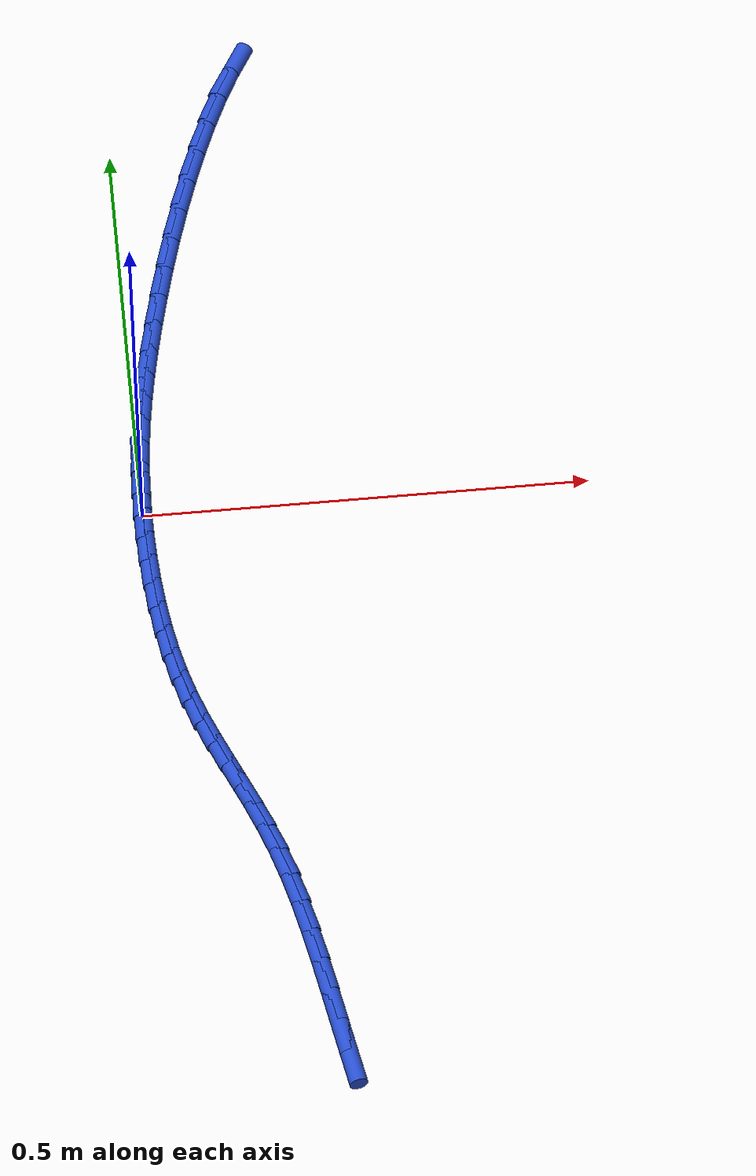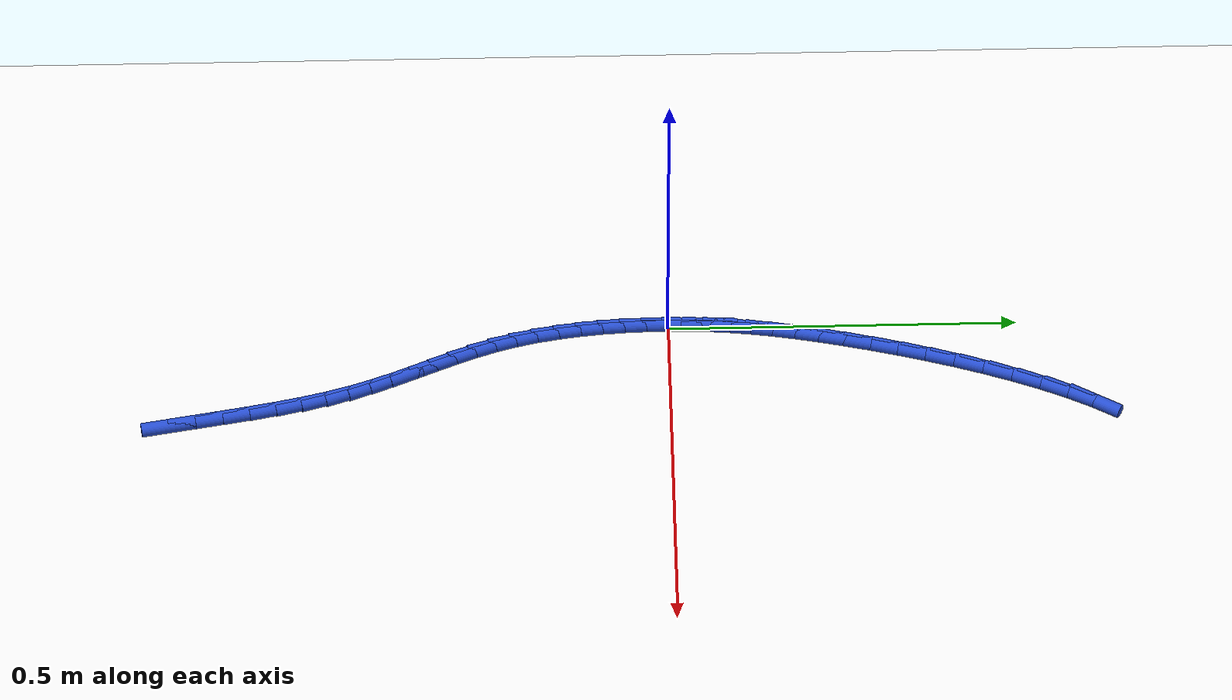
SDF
<sdf version="1.6">
 <world name="default">
  <model name="ground_plane">
   <static>1</static>
   <link name="link">
    <collision name="collision">
     <geometry><plane><normal>0 0 1</normal><size>100 100</size></plane></geometry>
     <surface><friction><ode><mu>100</mu><mu2>50</mu2></ode></friction></surface>
    </collision>
    <visual name="visual">
     <cast_shadows>0</cast_shadows>
     <geometry><plane><normal>0 0 1</normal><size>100 100</size></plane></geometry>
     <material>
      <script><uri>file://media/materials/scripts/gazebo.material</uri><name>Gazebo/WhiteGlow</name></script>
     </material>
    </visual>
   </link>
  </model>
  <model name="line">
   <link name="link_0">
    <pose>1.5178830414797062e-17 -6.938893903907228e-18 0.01 0 1.57 1.5493245993481484</pose>
    <collision name="collision">
     <geometry><cylinder><radius>0.01</radius><length>0.08</length></cylinder></geometry>
    </collision>
    <visual name="visual">
     <material>
      <script><name>Gazebo/Blue</name><uri>file://media/materials/scripts/gazebo.material</uri></script>
     </material>
     <geometry><cylinder><radius>0.01</radius><length>0.08</length></cylinder></geometry>
    </visual>
   </link>
   <link name="link_1">
    <pose>0.0006433644896471292 0.029958726749112572 0.01 0 1.57 1.5203189165857924</pose>
    <collision name="collision">
     <geometry><cylinder><radius>0.01</radius><length>0.08</length></cylinder></geometry>
    </collision>
    <visual name="visual">
     <material>
      <script><name>Gazebo/Blue</name><uri>file://media/materials/scripts/gazebo.material</uri></script>
     </material>
     <geometry><cylinder><radius>0.01</radius><length>0.08</length></cylinder></geometry>
    </visual>
   </link>
   <link name="link_2">
    <pose>0.0021341002988583247 0.05946637129228414 0.01 0 1.57 1.49000517151812</pose>
    <collision name="collision">
     <geometry><cylinder><radius>0.01</radius><length>0.08</length></cylinder></geometry>
    </collision>
    <visual name="visual">
     <material>
      <script><name>Gazebo/Blue</name><uri>file://media/materials/scripts/gazebo.material</uri></script>
     </material>
     <geometry><cylinder><radius>0.01</radius><length>0.08</length></cylinder></geometry>
    </visual>
   </link>
   <link name="link_3">
    <pose>0.004521526725779866 0.0889526404908136 0.01 0 1.57 1.459748752166192</pose>
    <collision name="collision">
     <geometry><cylinder><radius>0.01</radius><length>0.08</length></cylinder></geometry>
    </collision>
    <visual name="visual">
     <material>
      <script><name>Gazebo/Blue</name><uri>file://media/materials/scripts/gazebo.material</uri></script>
     </material>
     <geometry><cylinder><radius>0.01</radius><length>0.08</length></cylinder></geometry>
    </visual>
   </link>
   <link name="link_4">
    <pose>0.007854963068558022 0.11884724120599993 0.01 0 1.57 1.4308644825525358</pose>
    <collision name="collision">
     <geometry><cylinder><radius>0.01</radius><length>0.08</length></cylinder></geometry>
    </collision>
    <visual name="visual">
     <material>
      <script><name>Gazebo/Blue</name><uri>file://media/materials/scripts/gazebo.material</uri></script>
     </material>
     <geometry><cylinder><radius>0.01</radius><length>0.08</length></cylinder></geometry>
    </visual>
   </link>
   <link name="link_5">
    <pose>0.012183728625339056 0.1495798802991419 0.01 0 1.57 1.4044311878890807</pose>
    <collision name="collision">
     <geometry><cylinder><radius>0.01</radius><length>0.08</length></cylinder></geometry>
    </collision>
    <visual name="visual">
     <material>
      <script><name>Gazebo/Blue</name><uri>file://media/materials/scripts/gazebo.material</uri></script>
     </material>
     <geometry><cylinder><radius>0.01</radius><length>0.08</length></cylinder></geometry>
    </visual>
   </link>
   <link name="link_6">
    <pose>0.017557142694269237 0.1815802646315386 0.01 0 1.57 1.3811792666914606</pose>
    <collision name="collision">
     <geometry><cylinder><radius>0.01</radius><length>0.08</length></cylinder></geometry>
    </collision>
    <visual name="visual">
     <material>
      <script><name>Gazebo/Blue</name><uri>file://media/materials/scripts/gazebo.material</uri></script>
     </material>
     <geometry><cylinder><radius>0.01</radius><length>0.08</length></cylinder></geometry>
    </visual>
   </link>
   <link name="link_7">
    <pose>0.02402452457349482 0.21527810106448872 0.01 0 1.57 1.3614479357479026</pose>
    <collision name="collision">
     <geometry><cylinder><radius>0.01</radius><length>0.08</length></cylinder></geometry>
    </collision>
    <visual name="visual">
     <material>
      <script><name>Gazebo/Blue</name><uri>file://media/materials/scripts/gazebo.material</uri></script>
     </material>
     <geometry><cylinder><radius>0.01</radius><length>0.08</length></cylinder></geometry>
    </visual>
   </link>
   <link name="link_8">
    <pose>0.03163474784347373 0.2510974351449298 0.01 0 1.57 1.3438799071415506</pose>
    <collision name="collision">
     <geometry><cylinder><radius>0.01</radius><length>0.08</length></cylinder></geometry>
    </collision>
    <visual name="visual">
     <material>
      <script><name>Gazebo/Blue</name><uri>file://media/materials/scripts/gazebo.material</uri></script>
     </material>
     <geometry><cylinder><radius>0.01</radius><length>0.08</length></cylinder></geometry>
    </visual>
   </link>
   <link name="link_9">
    <pose>0.04040758389248529 0.2890926688924378 0.01 0 1.57 1.3258168243298414</pose>
    <collision name="collision">
     <geometry><cylinder><radius>0.01</radius><length>0.08</length></cylinder></geometry>
    </collision>
    <visual name="visual">
     <material>
      <script><name>Gazebo/Blue</name><uri>file://media/materials/scripts/gazebo.material</uri></script>
     </material>
     <geometry><cylinder><radius>0.01</radius><length>0.08</length></cylinder></geometry>
    </visual>
   </link>
   <link name="link_10">
    <pose>0.050316284232610205 0.3287273288686516 0.01 0 1.57 1.306424946240853</pose>
    <collision name="collision">
     <geometry><cylinder><radius>0.01</radius><length>0.08</length></cylinder></geometry>
    </collision>
    <visual name="visual">
     <material>
      <script><name>Gazebo/Blue</name><uri>file://media/materials/scripts/gazebo.material</uri></script>
     </material>
     <geometry><cylinder><radius>0.01</radius><length>0.08</length></cylinder></geometry>
    </visual>
   </link>
   <link name="link_11">
    <pose>0.06132992902549046 0.36941195893615586 0.01 0 1.57 1.2850545815913803</pose>
    <collision name="collision">
     <geometry><cylinder><radius>0.01</radius><length>0.08</length></cylinder></geometry>
    </collision>
    <visual name="visual">
     <material>
      <script><name>Gazebo/Blue</name><uri>file://media/materials/scripts/gazebo.material</uri></script>
     </material>
     <geometry><cylinder><radius>0.01</radius><length>0.08</length></cylinder></geometry>
    </visual>
   </link>
   <link name="link_12">
    <pose>0.07341759843276806 0.4105571029575351 0.01 0 1.57 1.260969768004758</pose>
    <collision name="collision">
     <geometry><cylinder><radius>0.01</radius><length>0.08</length></cylinder></geometry>
    </collision>
    <visual name="visual">
     <material>
      <script><name>Gazebo/Blue</name><uri>file://media/materials/scripts/gazebo.material</uri></script>
     </material>
     <geometry><cylinder><radius>0.01</radius><length>0.08</length></cylinder></geometry>
    </visual>
   </link>
   <link name="link_13">
    <pose>0.08654837261608499 0.45157330479537383 0.01 0 1.57 1.2332656017713683</pose>
    <collision name="collision">
     <geometry><cylinder><radius>0.01</radius><length>0.08</length></cylinder></geometry>
    </collision>
    <visual name="visual">
     <material>
      <script><name>Gazebo/Blue</name><uri>file://media/materials/scripts/gazebo.material</uri></script>
     </material>
     <geometry><cylinder><radius>0.01</radius><length>0.08</length></cylinder></geometry>
    </visual>
   </link>
   <link name="link_14">
    <pose>0.10069133173708325 0.49187110831225667 0.01 0 1.57 1.2007637937305777</pose>
    <collision name="collision">
     <geometry><cylinder><radius>0.01</radius><length>0.08</length></cylinder></geometry>
    </collision>
    <visual name="visual">
     <material>
      <script><name>Gazebo/Blue</name><uri>file://media/materials/scripts/gazebo.material</uri></script>
     </material>
     <geometry><cylinder><radius>0.01</radius><length>0.08</length></cylinder></geometry>
    </visual>
   </link>
   <link name="link_15">
    <pose>0.11581555595740484 0.530861057370768 0.01 0 1.57 1.161863694016493</pose>
    <collision name="collision">
     <geometry><cylinder><radius>0.01</radius><length>0.08</length></cylinder></geometry>
    </collision>
    <visual name="visual">
     <material>
      <script><name>Gazebo/Blue</name><uri>file://media/materials/scripts/gazebo.material</uri></script>
     </material>
     <geometry><cylinder><radius>0.01</radius><length>0.08</length></cylinder></geometry>
    </visual>
   </link>
   <link name="link_16">
    <pose>0.13189012543869175 0.5679536958334926 0.01 0 1.57 1.1143161216454736</pose>
    <collision name="collision">
     <geometry><cylinder><radius>0.01</radius><length>0.08</length></cylinder></geometry>
    </collision>
    <visual name="visual">
     <material>
      <script><name>Gazebo/Blue</name><uri>file://media/materials/scripts/gazebo.material</uri></script>
     </material>
     <geometry><cylinder><radius>0.01</radius><length>0.08</length></cylinder></geometry>
    </visual>
   </link>
   <link name="link_17">
    <pose>0.14888412034258597 0.6025595675630149 0.01 0 1.57 1.0548704995543596</pose>
    <collision name="collision">
     <geometry><cylinder><radius>0.01</radius><length>0.08</length></cylinder></geometry>
    </collision>
    <visual name="visual">
     <material>
      <script><name>Gazebo/Blue</name><uri>file://media/materials/scripts/gazebo.material</uri></script>
     </material>
     <geometry><cylinder><radius>0.01</radius><length>0.08</length></cylinder></geometry>
    </visual>
   </link>
   <link name="link_238">
    <pose>0.1641630672658217 -0.7110446395049161 0.01 0 1.57 -1.3992395268435733</pose>
    <collision name="collision">
     <geometry><cylinder><radius>0.01</radius><length>0.08</length></cylinder></geometry>
    </collision>
    <visual name="visual">
     <material>
      <script><name>Gazebo/Blue</name><uri>file://media/materials/scripts/gazebo.material</uri></script>
     </material>
     <geometry><cylinder><radius>0.01</radius><length>0.08</length></cylinder></geometry>
    </visual>
   </link>
   <link name="link_239">
    <pose>0.15761287870019422 -0.6732390789800371 0.01 0 1.57 -1.401695181956177</pose>
    <collision name="collision">
     <geometry><cylinder><radius>0.01</radius><length>0.08</length></cylinder></geometry>
    </collision>
    <visual name="visual">
     <material>
      <script><name>Gazebo/Blue</name><uri>file://media/materials/scripts/gazebo.material</uri></script>
     </material>
     <geometry><cylinder><radius>0.01</radius><length>0.08</length></cylinder></geometry>
    </visual>
   </link>
   <link name="link_240">
    <pose>0.15108214971026826 -0.6349876476106908 0.01 0 1.57 -1.3964922552346895</pose>
    <collision name="collision">
     <geometry><cylinder><radius>0.01</radius><length>0.08</length></cylinder></geometry>
    </collision>
    <visual name="visual">
     <material>
      <script><name>Gazebo/Blue</name><uri>file://media/materials/scripts/gazebo.material</uri></script>
     </material>
     <geometry><cylinder><radius>0.01</radius><length>0.08</length></cylinder></geometry>
    </visual>
   </link>
   <link name="link_241">
    <pose>0.1443480254437344 -0.5967453555354337 0.01 0 1.57 -1.3834808116644748</pose>
    <collision name="collision">
     <geometry><cylinder><radius>0.01</radius><length>0.08</length></cylinder></geometry>
    </collision>
    <visual name="visual">
     <material>
      <script><name>Gazebo/Blue</name><uri>file://media/materials/scripts/gazebo.material</uri></script>
     </material>
     <geometry><cylinder><radius>0.01</radius><length>0.08</length></cylinder></geometry>
    </visual>
   </link>
   <link name="link_242">
    <pose>0.13718765104828332 -0.5589672128928228 0.01 0 1.57 -1.3620094650608505</pose>
    <collision name="collision">
     <geometry><cylinder><radius>0.01</radius><length>0.08</length></cylinder></geometry>
    </collision>
    <visual name="visual">
     <material>
      <script><name>Gazebo/Blue</name><uri>file://media/materials/scripts/gazebo.material</uri></script>
     </material>
     <geometry><cylinder><radius>0.01</radius><length>0.08</length></cylinder></geometry>
    </visual>
   </link>
   <link name="link_243">
    <pose>0.12937817167160565 -0.5221082298214149 0.01 0 1.57 -1.3308571445098396</pose>
    <collision name="collision">
     <geometry><cylinder><radius>0.01</radius><length>0.08</length></cylinder></geometry>
    </collision>
    <visual name="visual">
     <material>
      <script><name>Gazebo/Blue</name><uri>file://media/materials/scripts/gazebo.material</uri></script>
     </material>
     <geometry><cylinder><radius>0.01</radius><length>0.08</length></cylinder></geometry>
    </visual>
   </link>
   <link name="link_244">
    <pose>0.12069673246139209 -0.48662341645976676 0.01 0 1.57 -1.2882706658996768</pose>
    <collision name="collision">
     <geometry><cylinder><radius>0.01</radius><length>0.08</length></cylinder></geometry>
    </collision>
    <visual name="visual">
     <material>
      <script><name>Gazebo/Blue</name><uri>file://media/materials/scripts/gazebo.material</uri></script>
     </material>
     <geometry><cylinder><radius>0.01</radius><length>0.08</length></cylinder></geometry>
    </visual>
   </link>
   <link name="link_245">
    <pose>0.11092489452361073 -0.45296118103977473 0.01 0 1.57 -1.2411647758550286</pose>
    <collision name="collision">
     <geometry><cylinder><radius>0.01</radius><length>0.08</length></cylinder></geometry>
    </collision>
    <visual name="visual">
     <material>
      <script><name>Gazebo/Blue</name><uri>file://media/materials/scripts/gazebo.material</uri></script>
     </material>
     <geometry><cylinder><radius>0.01</radius><length>0.08</length></cylinder></geometry>
    </visual>
   </link>
   <link name="link_246">
    <pose>0.10007003558297083 -0.42123233344086797 0.01 0 1.57 -1.2037711935519697</pose>
    <collision name="collision">
     <geometry><cylinder><radius>0.01</radius><length>0.08</length></cylinder></geometry>
    </collision>
    <visual name="visual">
     <material>
      <script><name>Gazebo/Blue</name><uri>file://media/materials/scripts/gazebo.material</uri></script>
     </material>
     <geometry><cylinder><radius>0.01</radius><length>0.08</length></cylinder></geometry>
    </visual>
   </link>
   <link name="link_247">
    <pose>0.08846872611995635 -0.3910555367172538 0.01 0 1.57 -1.1794395363200274</pose>
    <collision name="collision">
     <geometry><cylinder><radius>0.01</radius><length>0.08</length></cylinder></geometry>
    </collision>
    <visual name="visual">
     <material>
      <script><name>Gazebo/Blue</name><uri>file://media/materials/scripts/gazebo.material</uri></script>
     </material>
     <geometry><cylinder><radius>0.01</radius><length>0.08</length></cylinder></geometry>
    </visual>
   </link>
   <link name="link_248">
    <pose>0.07648355302047166 -0.36201055910815333 0.01 0 1.57 -1.1699796588045421</pose>
    <collision name="collision">
     <geometry><cylinder><radius>0.01</radius><length>0.08</length></cylinder></geometry>
    </collision>
    <visual name="visual">
     <material>
      <script><name>Gazebo/Blue</name><uri>file://media/materials/scripts/gazebo.material</uri></script>
     </material>
     <geometry><cylinder><radius>0.01</radius><length>0.08</length></cylinder></geometry>
    </visual>
   </link>
   <link name="link_249">
    <pose>0.06447710317042092 -0.3336771688527873 0.01 0 1.57 -1.176583928680925</pose>
    <collision name="collision">
     <geometry><cylinder><radius>0.01</radius><length>0.08</length></cylinder></geometry>
    </collision>
    <visual name="visual">
     <material>
      <script><name>Gazebo/Blue</name><uri>file://media/materials/scripts/gazebo.material</uri></script>
     </material>
     <geometry><cylinder><radius>0.01</radius><length>0.08</length></cylinder></geometry>
    </visual>
   </link>
   <link name="link_250">
    <pose>0.05281196345570846 -0.30563513419037674 0.01 0 1.57 -1.1997234830921175</pose>
    <collision name="collision">
     <geometry><cylinder><radius>0.01</radius><length>0.08</length></cylinder></geometry>
    </collision>
    <visual name="visual">
     <material>
      <script><name>Gazebo/Blue</name><uri>file://media/materials/scripts/gazebo.material</uri></script>
     </material>
     <geometry><cylinder><radius>0.01</radius><length>0.08</length></cylinder></geometry>
    </visual>
   </link>
   <link name="link_251">
    <pose>0.041850720762238516 -0.2774642233601424 0.01 0 1.57 -1.239007491539465</pose>
    <collision name="collision">
     <geometry><cylinder><radius>0.01</radius><length>0.08</length></cylinder></geometry>
    </collision>
    <visual name="visual">
     <material>
      <script><name>Gazebo/Blue</name><uri>file://media/materials/scripts/gazebo.material</uri></script>
     </material>
     <geometry><cylinder><radius>0.01</radius><length>0.08</length></cylinder></geometry>
    </visual>
   </link>
   <link name="link_252">
    <pose>0.03195596197591508 -0.2487442046013046 0.01 0 1.57 -1.291966465848097</pose>
    <collision name="collision">
     <geometry><cylinder><radius>0.01</radius><length>0.08</length></cylinder></geometry>
    </collision>
    <visual name="visual">
     <material>
      <script><name>Gazebo/Blue</name><uri>file://media/materials/scripts/gazebo.material</uri></script>
     </material>
     <geometry><cylinder><radius>0.01</radius><length>0.08</length></cylinder></geometry>
    </visual>
   </link>
   <link name="link_253">
    <pose>0.023466361897285105 -0.21909013479299347 0.01 0 1.57 -1.3453755803436063</pose>
    <collision name="collision">
     <geometry><cylinder><radius>0.01</radius><length>0.08</length></cylinder></geometry>
    </collision>
    <visual name="visual">
     <material>
      <script><name>Gazebo/Blue</name><uri>file://media/materials/scripts/gazebo.material</uri></script>
     </material>
     <geometry><cylinder><radius>0.01</radius><length>0.08</length></cylinder></geometry>
    </visual>
   </link>
   <link name="link_254">
    <pose>0.01645392215549604 -0.18851061798421545 0.01 0 1.57 -1.3925460701893373</pose>
    <collision name="collision">
     <geometry><cylinder><radius>0.01</radius><length>0.08</length></cylinder></geometry>
    </collision>
    <visual name="visual">
     <material>
      <script><name>Gazebo/Blue</name><uri>file://media/materials/scripts/gazebo.material</uri></script>
     </material>
     <geometry><cylinder><radius>0.01</radius><length>0.08</length></cylinder></geometry>
    </visual>
   </link>
   <link name="link_255">
    <pose>0.01082381732603453 -0.1572604558991443 0.01 0 1.57 -1.434413765336182</pose>
    <collision name="collision">
     <geometry><cylinder><radius>0.01</radius><length>0.08</length></cylinder></geometry>
    </collision>
    <visual name="visual">
     <material>
      <script><name>Gazebo/Blue</name><uri>file://media/materials/scripts/gazebo.material</uri></script>
     </material>
     <geometry><cylinder><radius>0.01</radius><length>0.08</length></cylinder></geometry>
    </visual>
   </link>
   <link name="link_256">
    <pose>0.006478666927082274 -0.12559822092836875 0.01 0 1.57 -1.4718745145387448</pose>
    <collision name="collision">
     <geometry><cylinder><radius>0.01</radius><length>0.08</length></cylinder></geometry>
    </collision>
    <visual name="visual">
     <material>
      <script><name>Gazebo/Blue</name><uri>file://media/materials/scripts/gazebo.material</uri></script>
     </material>
     <geometry><cylinder><radius>0.01</radius><length>0.08</length></cylinder></geometry>
    </visual>
   </link>
   <link name="link_257">
    <pose>0.0033210904768209834 -0.09378248546247772 0.01 0 1.57 -1.5056932630149449</pose>
    <collision name="collision">
     <geometry><cylinder><radius>0.01</radius><length>0.08</length></cylinder></geometry>
    </collision>
    <visual name="visual">
     <material>
      <script><name>Gazebo/Blue</name><uri>file://media/materials/scripts/gazebo.material</uri></script>
     </material>
     <geometry><cylinder><radius>0.01</radius><length>0.08</length></cylinder></geometry>
    </visual>
   </link>
   <link name="link_258">
    <pose>0.00125370749343237 -0.06207182189206008 0.01 0 1.57 -1.5365299305543785</pose>
    <collision name="collision">
     <geometry><cylinder><radius>0.01</radius><length>0.08</length></cylinder></geometry>
    </collision>
    <visual name="visual">
     <material>
      <script><name>Gazebo/Blue</name><uri>file://media/materials/scripts/gazebo.material</uri></script>
     </material>
     <geometry><cylinder><radius>0.01</radius><length>0.08</length></cylinder></geometry>
    </visual>
   </link>
   <link name="link_259">
    <pose>0.00017913749509814543 -0.03072480260770462 0.01 0 1.57 -1.564966005682829</pose>
    <collision name="collision">
     <geometry><cylinder><radius>0.01</radius><length>0.08</length></cylinder></geometry>
    </collision>
    <visual name="visual">
     <material>
      <script><name>Gazebo/Blue</name><uri>file://media/materials/scripts/gazebo.material</uri></script>
     </material>
     <geometry><cylinder><radius>0.01</radius><length>0.08</length></cylinder></geometry>
    </visual>
   </link>
   <link name="link_260">
    <pose>1.691355389077387e-17 -2.1510571102112408e-16 0.01 0 1.57 1.5500609849728821</pose>
    <collision name="collision">
     <geometry><cylinder><radius>0.01</radius><length>0.08</length></cylinder></geometry>
    </collision>
    <visual name="visual">
     <material>
      <script><name>Gazebo/Blue</name><uri>file://media/materials/scripts/gazebo.material</uri></script>
     </material>
     <geometry><cylinder><radius>0.01</radius><length>0.08</length></cylinder></geometry>
    </visual>
   </link>
   <link name="link_261">
    <pose>0.000618914526319697 0.029844013540464287 0.01 0 1.57 1.5248575131886666</pose>
    <collision name="collision">
     <geometry><cylinder><radius>0.01</radius><length>0.08</length></cylinder></geometry>
    </collision>
    <visual name="visual">
     <material>
      <script><name>Gazebo/Blue</name><uri>file://media/materials/scripts/gazebo.material</uri></script>
     </material>
     <geometry><cylinder><radius>0.01</radius><length>0.08</length></cylinder></geometry>
    </visual>
   </link>
   <link name="link_262">
    <pose>0.0019385005922388943 0.05854866562310003 0.01 0 1.57 1.5376991981778156</pose>
    <collision name="collision">
     <geometry><cylinder><radius>0.01</radius><length>0.08</length></cylinder></geometry>
    </collision>
    <visual name="visual">
     <material>
      <script><name>Gazebo/Blue</name><uri>file://media/materials/scripts/gazebo.material</uri></script>
     </material>
     <geometry><cylinder><radius>0.01</radius><length>0.08</length></cylinder></geometry>
    </visual>
   </link>
  </model>
 </world>
</sdf>
